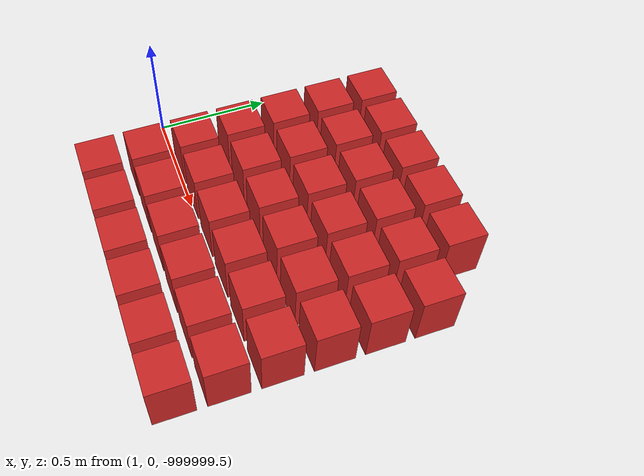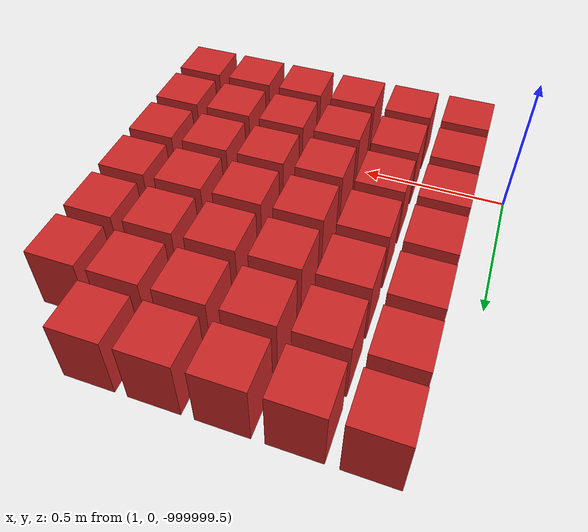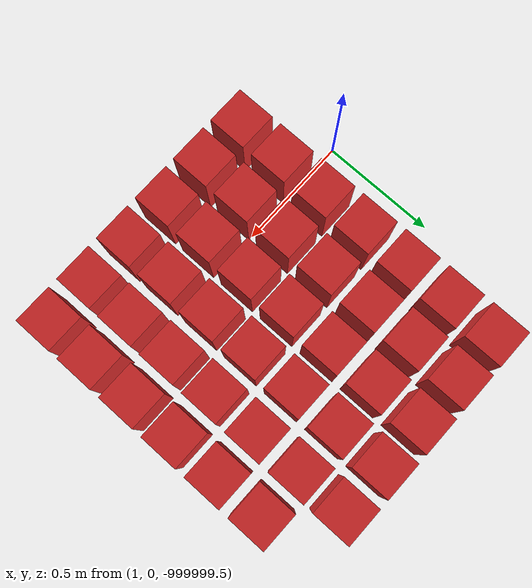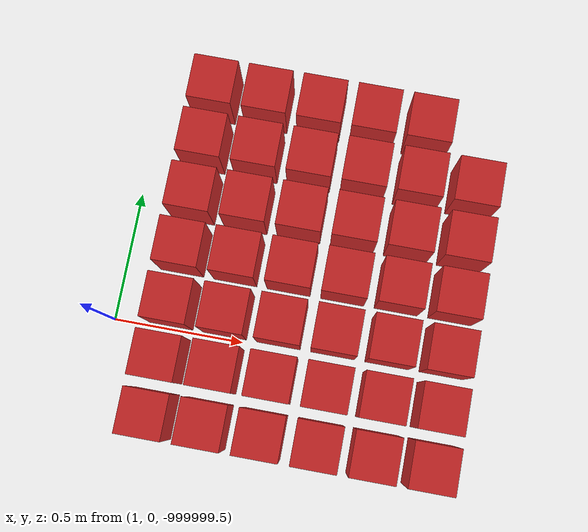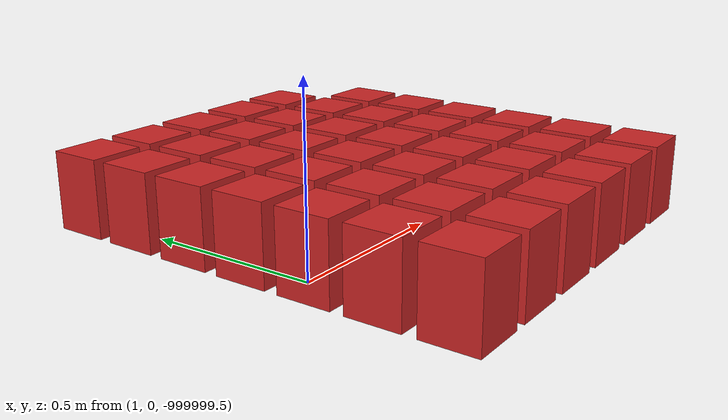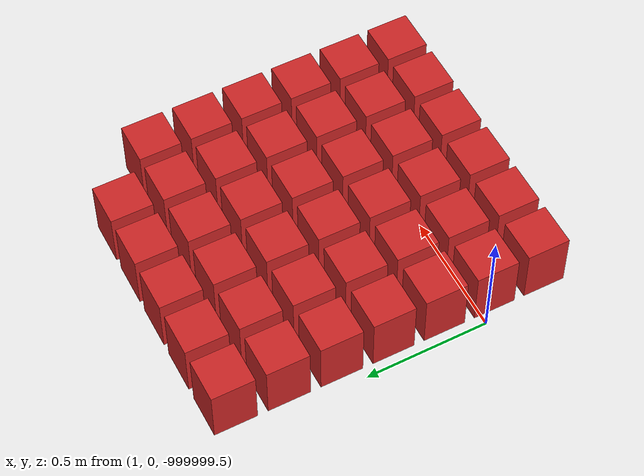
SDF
<sdf version="1.7">
 <world name="default">
  <model name="ground_plane">
   <static>1</static>
   <link name="link">
    <collision name="collision">
     <geometry><plane><normal>0 0 1</normal><size>100 100</size></plane></geometry>
     <surface>
      <contact><collide_bitmask>65535</collide_bitmask></contact>
      <friction><ode><mu>100</mu><mu2>50</mu2></ode></friction>
     </surface>
    </collision>
    <visual name="visual">
     <cast_shadows>0</cast_shadows>
     <geometry><plane><normal>0 0 1</normal><size>100 100</size></plane></geometry>
     <material>
      <script><uri>file://media/materials/scripts/gazebo.material</uri><name>Gazebo/Grey</name></script>
     </material>
    </visual>
   </link>
  </model>
  <model name="wall_247">
   <link name="link">
    <pose>0 0 0.5 0 -0 0</pose>
    <inertial>
     <mass>0.5167</mass>
     <inertia>
      <ixx>0.000861167</ixx>
      <ixy>0</ixy>
      <ixz>0</ixz>
      <iyy>0.000861167</iyy>
      <iyz>0</iyz>
      <izz>0.000861167</izz>
     </inertia>
    </inertial>
    <collision name="collision">
     <geometry><box><size>0.21 0.21 0.25</size></box></geometry>
     <surface>
      <contact>
       <poissons_ratio>0.347</poissons_ratio>
       <elastic_modulus>8.8e+09</elastic_modulus>
       <ode><kp>100000</kp><kd>100</kd><max_vel>100</max_vel><min_depth>0.001</min_depth></ode>
      </contact>
      <friction>
       <torsional>
        <coefficient>1</coefficient>
        <use_patch_radius>0</use_patch_radius>
        <surface_radius>0.01</surface_radius>
       </torsional>
      </friction>
     </surface>
    </collision>
    <visual name="visual">
     <geometry><box><size>0.175 0.175 0.25</size></box></geometry>
     <material>
      <script><uri>file://media/materials/scripts/gazebo.material</uri><name>Gazebo/Red</name></script>
     </material>
    </visual>
   </link>
   <pose>1.19565 -0.326087 -1e+06 0 -0 0</pose>
  </model>
  <model name="wall_248">
   <link name="link">
    <pose>0 0 0.5 0 -0 0</pose>
    <inertial>
     <mass>0.5167</mass>
     <inertia>
      <ixx>0.000861167</ixx>
      <ixy>0</ixy>
      <ixz>0</ixz>
      <iyy>0.000861167</iyy>
      <iyz>0</iyz>
      <izz>0.000861167</izz>
     </inertia>
    </inertial>
    <collision name="collision">
     <geometry><box><size>0.21 0.21 0.25</size></box></geometry>
     <surface>
      <contact>
       <poissons_ratio>0.347</poissons_ratio>
       <elastic_modulus>8.8e+09</elastic_modulus>
       <ode><kp>100000</kp><kd>100</kd><max_vel>100</max_vel><min_depth>0.001</min_depth></ode>
      </contact>
      <friction>
       <torsional>
        <coefficient>1</coefficient>
        <use_patch_radius>0</use_patch_radius>
        <surface_radius>0.01</surface_radius>
       </torsional>
      </friction>
     </surface>
    </collision>
    <visual name="visual">
     <geometry><box><size>0.175 0.175 0.25</size></box></geometry>
     <material>
      <script><uri>file://media/materials/scripts/gazebo.material</uri><name>Gazebo/Red</name></script>
     </material>
    </visual>
   </link>
   <pose>1.41304 -0.326087 -1e+06 0 -0 0</pose>
  </model>
  <model name="wall_249">
   <link name="link">
    <pose>0 0 0.5 0 -0 0</pose>
    <inertial>
     <mass>0.5167</mass>
     <inertia>
      <ixx>0.000861167</ixx>
      <ixy>0</ixy>
      <ixz>0</ixz>
      <iyy>0.000861167</iyy>
      <iyz>0</iyz>
      <izz>0.000861167</izz>
     </inertia>
    </inertial>
    <collision name="collision">
     <geometry><box><size>0.21 0.21 0.25</size></box></geometry>
     <surface>
      <contact>
       <poissons_ratio>0.347</poissons_ratio>
       <elastic_modulus>8.8e+09</elastic_modulus>
       <ode><kp>100000</kp><kd>100</kd><max_vel>100</max_vel><min_depth>0.001</min_depth></ode>
      </contact>
      <friction>
       <torsional>
        <coefficient>1</coefficient>
        <use_patch_radius>0</use_patch_radius>
        <surface_radius>0.01</surface_radius>
       </torsional>
      </friction>
     </surface>
    </collision>
    <visual name="visual">
     <geometry><box><size>0.175 0.175 0.25</size></box></geometry>
     <material>
      <script><uri>file://media/materials/scripts/gazebo.material</uri><name>Gazebo/Red</name></script>
     </material>
    </visual>
   </link>
   <pose>1.63043 -0.326087 -1e+06 0 -0 0</pose>
  </model>
  <model name="wall_250">
   <link name="link">
    <pose>0 0 0.5 0 -0 0</pose>
    <inertial>
     <mass>0.5167</mass>
     <inertia>
      <ixx>0.000861167</ixx>
      <ixy>0</ixy>
      <ixz>0</ixz>
      <iyy>0.000861167</iyy>
      <iyz>0</iyz>
      <izz>0.000861167</izz>
     </inertia>
    </inertial>
    <collision name="collision">
     <geometry><box><size>0.21 0.21 0.25</size></box></geometry>
     <surface>
      <contact>
       <poissons_ratio>0.347</poissons_ratio>
       <elastic_modulus>8.8e+09</elastic_modulus>
       <ode><kp>100000</kp><kd>100</kd><max_vel>100</max_vel><min_depth>0.001</min_depth></ode>
      </contact>
      <friction>
       <torsional>
        <coefficient>1</coefficient>
        <use_patch_radius>0</use_patch_radius>
        <surface_radius>0.01</surface_radius>
       </torsional>
      </friction>
     </surface>
    </collision>
    <visual name="visual">
     <geometry><box><size>0.175 0.175 0.25</size></box></geometry>
     <material>
      <script><uri>file://media/materials/scripts/gazebo.material</uri><name>Gazebo/Red</name></script>
     </material>
    </visual>
   </link>
   <pose>1.84783 -0.326087 -1e+06 0 -0 0</pose>
  </model>
  <model name="wall_251">
   <link name="link">
    <pose>0 0 0.5 0 -0 0</pose>
    <inertial>
     <mass>0.5167</mass>
     <inertia>
      <ixx>0.000861167</ixx>
      <ixy>0</ixy>
      <ixz>0</ixz>
      <iyy>0.000861167</iyy>
      <iyz>0</iyz>
      <izz>0.000861167</izz>
     </inertia>
    </inertial>
    <collision name="collision">
     <geometry><box><size>0.21 0.21 0.25</size></box></geometry>
     <surface>
      <contact>
       <poissons_ratio>0.347</poissons_ratio>
       <elastic_modulus>8.8e+09</elastic_modulus>
       <ode><kp>100000</kp><kd>100</kd><max_vel>100</max_vel><min_depth>0.001</min_depth></ode>
      </contact>
      <friction>
       <torsional>
        <coefficient>1</coefficient>
        <use_patch_radius>0</use_patch_radius>
        <surface_radius>0.01</surface_radius>
       </torsional>
      </friction>
     </surface>
    </collision>
    <visual name="visual">
     <geometry><box><size>0.175 0.175 0.25</size></box></geometry>
     <material>
      <script><uri>file://media/materials/scripts/gazebo.material</uri><name>Gazebo/Red</name></script>
     </material>
    </visual>
   </link>
   <pose>2.06522 -0.326087 -1e+06 0 -0 0</pose>
  </model>
  <model name="wall_252">
   <link name="link">
    <pose>0 0 0.5 0 -0 0</pose>
    <inertial>
     <mass>0.5167</mass>
     <inertia>
      <ixx>0.000861167</ixx>
      <ixy>0</ixy>
      <ixz>0</ixz>
      <iyy>0.000861167</iyy>
      <iyz>0</iyz>
      <izz>0.000861167</izz>
     </inertia>
    </inertial>
    <collision name="collision">
     <geometry><box><size>0.21 0.21 0.25</size></box></geometry>
     <surface>
      <contact>
       <poissons_ratio>0.347</poissons_ratio>
       <elastic_modulus>8.8e+09</elastic_modulus>
       <ode><kp>100000</kp><kd>100</kd><max_vel>100</max_vel><min_depth>0.001</min_depth></ode>
      </contact>
      <friction>
       <torsional>
        <coefficient>1</coefficient>
        <use_patch_radius>0</use_patch_radius>
        <surface_radius>0.01</surface_radius>
       </torsional>
      </friction>
     </surface>
    </collision>
    <visual name="visual">
     <geometry><box><size>0.175 0.175 0.25</size></box></geometry>
     <material>
      <script><uri>file://media/materials/scripts/gazebo.material</uri><name>Gazebo/Red</name></script>
     </material>
    </visual>
   </link>
   <pose>2.28261 -0.326087 -1e+06 0 -0 0</pose>
  </model>
  <model name="wall_270">
   <link name="link">
    <pose>0 0 0.5 0 -0 0</pose>
    <inertial>
     <mass>0.5167</mass>
     <inertia>
      <ixx>0.000861167</ixx>
      <ixy>0</ixy>
      <ixz>0</ixz>
      <iyy>0.000861167</iyy>
      <iyz>0</iyz>
      <izz>0.000861167</izz>
     </inertia>
    </inertial>
    <collision name="collision">
     <geometry><box><size>0.21 0.21 0.25</size></box></geometry>
     <surface>
      <contact>
       <poissons_ratio>0.347</poissons_ratio>
       <elastic_modulus>8.8e+09</elastic_modulus>
       <ode><kp>100000</kp><kd>100</kd><max_vel>100</max_vel><min_depth>0.001</min_depth></ode>
      </contact>
      <friction>
       <torsional>
        <coefficient>1</coefficient>
        <use_patch_radius>0</use_patch_radius>
        <surface_radius>0.01</surface_radius>
       </torsional>
      </friction>
     </surface>
    </collision>
    <visual name="visual">
     <geometry><box><size>0.175 0.175 0.25</size></box></geometry>
     <material>
      <script><uri>file://media/materials/scripts/gazebo.material</uri><name>Gazebo/Red</name></script>
     </material>
    </visual>
   </link>
   <pose>1.19565 -0.108696 -1e+06 0 -0 0</pose>
  </model>
  <model name="wall_271">
   <link name="link">
    <pose>0 0 0.5 0 -0 0</pose>
    <inertial>
     <mass>0.5167</mass>
     <inertia>
      <ixx>0.000861167</ixx>
      <ixy>0</ixy>
      <ixz>0</ixz>
      <iyy>0.000861167</iyy>
      <iyz>0</iyz>
      <izz>0.000861167</izz>
     </inertia>
    </inertial>
    <collision name="collision">
     <geometry><box><size>0.21 0.21 0.25</size></box></geometry>
     <surface>
      <contact>
       <poissons_ratio>0.347</poissons_ratio>
       <elastic_modulus>8.8e+09</elastic_modulus>
       <ode><kp>100000</kp><kd>100</kd><max_vel>100</max_vel><min_depth>0.001</min_depth></ode>
      </contact>
      <friction>
       <torsional>
        <coefficient>1</coefficient>
        <use_patch_radius>0</use_patch_radius>
        <surface_radius>0.01</surface_radius>
       </torsional>
      </friction>
     </surface>
    </collision>
    <visual name="visual">
     <geometry><box><size>0.175 0.175 0.25</size></box></geometry>
     <material>
      <script><uri>file://media/materials/scripts/gazebo.material</uri><name>Gazebo/Red</name></script>
     </material>
    </visual>
   </link>
   <pose>1.41304 -0.108696 -1e+06 0 -0 0</pose>
  </model>
  <model name="wall_272">
   <link name="link">
    <pose>0 0 0.5 0 -0 0</pose>
    <inertial>
     <mass>0.5167</mass>
     <inertia>
      <ixx>0.000861167</ixx>
      <ixy>0</ixy>
      <ixz>0</ixz>
      <iyy>0.000861167</iyy>
      <iyz>0</iyz>
      <izz>0.000861167</izz>
     </inertia>
    </inertial>
    <collision name="collision">
     <geometry><box><size>0.21 0.21 0.25</size></box></geometry>
     <surface>
      <contact>
       <poissons_ratio>0.347</poissons_ratio>
       <elastic_modulus>8.8e+09</elastic_modulus>
       <ode><kp>100000</kp><kd>100</kd><max_vel>100</max_vel><min_depth>0.001</min_depth></ode>
      </contact>
      <friction>
       <torsional>
        <coefficient>1</coefficient>
        <use_patch_radius>0</use_patch_radius>
        <surface_radius>0.01</surface_radius>
       </torsional>
      </friction>
     </surface>
    </collision>
    <visual name="visual">
     <geometry><box><size>0.175 0.175 0.25</size></box></geometry>
     <material>
      <script><uri>file://media/materials/scripts/gazebo.material</uri><name>Gazebo/Red</name></script>
     </material>
    </visual>
   </link>
   <pose>1.63043 -0.108696 -1e+06 0 -0 0</pose>
  </model>
  <model name="wall_273">
   <link name="link">
    <pose>0 0 0.5 0 -0 0</pose>
    <inertial>
     <mass>0.5167</mass>
     <inertia>
      <ixx>0.000861167</ixx>
      <ixy>0</ixy>
      <ixz>0</ixz>
      <iyy>0.000861167</iyy>
      <iyz>0</iyz>
      <izz>0.000861167</izz>
     </inertia>
    </inertial>
    <collision name="collision">
     <geometry><box><size>0.21 0.21 0.25</size></box></geometry>
     <surface>
      <contact>
       <poissons_ratio>0.347</poissons_ratio>
       <elastic_modulus>8.8e+09</elastic_modulus>
       <ode><kp>100000</kp><kd>100</kd><max_vel>100</max_vel><min_depth>0.001</min_depth></ode>
      </contact>
      <friction>
       <torsional>
        <coefficient>1</coefficient>
        <use_patch_radius>0</use_patch_radius>
        <surface_radius>0.01</surface_radius>
       </torsional>
      </friction>
     </surface>
    </collision>
    <visual name="visual">
     <geometry><box><size>0.175 0.175 0.25</size></box></geometry>
     <material>
      <script><uri>file://media/materials/scripts/gazebo.material</uri><name>Gazebo/Red</name></script>
     </material>
    </visual>
   </link>
   <pose>1.84783 -0.108696 -1e+06 0 -0 0</pose>
  </model>
  <model name="wall_274">
   <link name="link">
    <pose>0 0 0.5 0 -0 0</pose>
    <inertial>
     <mass>0.5167</mass>
     <inertia>
      <ixx>0.000861167</ixx>
      <ixy>0</ixy>
      <ixz>0</ixz>
      <iyy>0.000861167</iyy>
      <iyz>0</iyz>
      <izz>0.000861167</izz>
     </inertia>
    </inertial>
    <collision name="collision">
     <geometry><box><size>0.21 0.21 0.25</size></box></geometry>
     <surface>
      <contact>
       <poissons_ratio>0.347</poissons_ratio>
       <elastic_modulus>8.8e+09</elastic_modulus>
       <ode><kp>100000</kp><kd>100</kd><max_vel>100</max_vel><min_depth>0.001</min_depth></ode>
      </contact>
      <friction>
       <torsional>
        <coefficient>1</coefficient>
        <use_patch_radius>0</use_patch_radius>
        <surface_radius>0.01</surface_radius>
       </torsional>
      </friction>
     </surface>
    </collision>
    <visual name="visual">
     <geometry><box><size>0.175 0.175 0.25</size></box></geometry>
     <material>
      <script><uri>file://media/materials/scripts/gazebo.material</uri><name>Gazebo/Red</name></script>
     </material>
    </visual>
   </link>
   <pose>2.06522 -0.108696 -1e+06 0 -0 0</pose>
  </model>
  <model name="wall_275">
   <link name="link">
    <pose>0 0 0.5 0 -0 0</pose>
    <inertial>
     <mass>0.5167</mass>
     <inertia>
      <ixx>0.000861167</ixx>
      <ixy>0</ixy>
      <ixz>0</ixz>
      <iyy>0.000861167</iyy>
      <iyz>0</iyz>
      <izz>0.000861167</izz>
     </inertia>
    </inertial>
    <collision name="collision">
     <geometry><box><size>0.21 0.21 0.25</size></box></geometry>
     <surface>
      <contact>
       <poissons_ratio>0.347</poissons_ratio>
       <elastic_modulus>8.8e+09</elastic_modulus>
       <ode><kp>100000</kp><kd>100</kd><max_vel>100</max_vel><min_depth>0.001</min_depth></ode>
      </contact>
      <friction>
       <torsional>
        <coefficient>1</coefficient>
        <use_patch_radius>0</use_patch_radius>
        <surface_radius>0.01</surface_radius>
       </torsional>
      </friction>
     </surface>
    </collision>
    <visual name="visual">
     <geometry><box><size>0.175 0.175 0.25</size></box></geometry>
     <material>
      <script><uri>file://media/materials/scripts/gazebo.material</uri><name>Gazebo/Red</name></script>
     </material>
    </visual>
   </link>
   <pose>2.28261 -0.108696 -1e+06 0 -0 0</pose>
  </model>
  <model name="wall_293">
   <link name="link">
    <pose>0 0 0.5 0 -0 0</pose>
    <inertial>
     <mass>0.5167</mass>
     <inertia>
      <ixx>0.000861167</ixx>
      <ixy>0</ixy>
      <ixz>0</ixz>
      <iyy>0.000861167</iyy>
      <iyz>0</iyz>
      <izz>0.000861167</izz>
     </inertia>
    </inertial>
    <collision name="collision">
     <geometry><box><size>0.21 0.21 0.25</size></box></geometry>
     <surface>
      <contact>
       <poissons_ratio>0.347</poissons_ratio>
       <elastic_modulus>8.8e+09</elastic_modulus>
       <ode><kp>100000</kp><kd>100</kd><max_vel>100</max_vel><min_depth>0.001</min_depth></ode>
      </contact>
      <friction>
       <torsional>
        <coefficient>1</coefficient>
        <use_patch_radius>0</use_patch_radius>
        <surface_radius>0.01</surface_radius>
       </torsional>
      </friction>
     </surface>
    </collision>
    <visual name="visual">
     <geometry><box><size>0.175 0.175 0.25</size></box></geometry>
     <material>
      <script><uri>file://media/materials/scripts/gazebo.material</uri><name>Gazebo/Red</name></script>
     </material>
    </visual>
   </link>
   <pose>1.19565 0.108696 -1e+06 0 -0 0</pose>
  </model>
  <model name="wall_294">
   <link name="link">
    <pose>0 0 0.5 0 -0 0</pose>
    <inertial>
     <mass>0.5167</mass>
     <inertia>
      <ixx>0.000861167</ixx>
      <ixy>0</ixy>
      <ixz>0</ixz>
      <iyy>0.000861167</iyy>
      <iyz>0</iyz>
      <izz>0.000861167</izz>
     </inertia>
    </inertial>
    <collision name="collision">
     <geometry><box><size>0.21 0.21 0.25</size></box></geometry>
     <surface>
      <contact>
       <poissons_ratio>0.347</poissons_ratio>
       <elastic_modulus>8.8e+09</elastic_modulus>
       <ode><kp>100000</kp><kd>100</kd><max_vel>100</max_vel><min_depth>0.001</min_depth></ode>
      </contact>
      <friction>
       <torsional>
        <coefficient>1</coefficient>
        <use_patch_radius>0</use_patch_radius>
        <surface_radius>0.01</surface_radius>
       </torsional>
      </friction>
     </surface>
    </collision>
    <visual name="visual">
     <geometry><box><size>0.175 0.175 0.25</size></box></geometry>
     <material>
      <script><uri>file://media/materials/scripts/gazebo.material</uri><name>Gazebo/Red</name></script>
     </material>
    </visual>
   </link>
   <pose>1.41304 0.108696 -1e+06 0 -0 0</pose>
  </model>
  <model name="wall_295">
   <link name="link">
    <pose>0 0 0.5 0 -0 0</pose>
    <inertial>
     <mass>0.5167</mass>
     <inertia>
      <ixx>0.000861167</ixx>
      <ixy>0</ixy>
      <ixz>0</ixz>
      <iyy>0.000861167</iyy>
      <iyz>0</iyz>
      <izz>0.000861167</izz>
     </inertia>
    </inertial>
    <collision name="collision">
     <geometry><box><size>0.21 0.21 0.25</size></box></geometry>
     <surface>
      <contact>
       <poissons_ratio>0.347</poissons_ratio>
       <elastic_modulus>8.8e+09</elastic_modulus>
       <ode><kp>100000</kp><kd>100</kd><max_vel>100</max_vel><min_depth>0.001</min_depth></ode>
      </contact>
      <friction>
       <torsional>
        <coefficient>1</coefficient>
        <use_patch_radius>0</use_patch_radius>
        <surface_radius>0.01</surface_radius>
       </torsional>
      </friction>
     </surface>
    </collision>
    <visual name="visual">
     <geometry><box><size>0.175 0.175 0.25</size></box></geometry>
     <material>
      <script><uri>file://media/materials/scripts/gazebo.material</uri><name>Gazebo/Red</name></script>
     </material>
    </visual>
   </link>
   <pose>1.63043 0.108696 -1e+06 0 -0 0</pose>
  </model>
  <model name="wall_296">
   <link name="link">
    <pose>0 0 0.5 0 -0 0</pose>
    <inertial>
     <mass>0.5167</mass>
     <inertia>
      <ixx>0.000861167</ixx>
      <ixy>0</ixy>
      <ixz>0</ixz>
      <iyy>0.000861167</iyy>
      <iyz>0</iyz>
      <izz>0.000861167</izz>
     </inertia>
    </inertial>
    <collision name="collision">
     <geometry><box><size>0.21 0.21 0.25</size></box></geometry>
     <surface>
      <contact>
       <poissons_ratio>0.347</poissons_ratio>
       <elastic_modulus>8.8e+09</elastic_modulus>
       <ode><kp>100000</kp><kd>100</kd><max_vel>100</max_vel><min_depth>0.001</min_depth></ode>
      </contact>
      <friction>
       <torsional>
        <coefficient>1</coefficient>
        <use_patch_radius>0</use_patch_radius>
        <surface_radius>0.01</surface_radius>
       </torsional>
      </friction>
     </surface>
    </collision>
    <visual name="visual">
     <geometry><box><size>0.175 0.175 0.25</size></box></geometry>
     <material>
      <script><uri>file://media/materials/scripts/gazebo.material</uri><name>Gazebo/Red</name></script>
     </material>
    </visual>
   </link>
   <pose>1.84783 0.108696 -1e+06 0 -0 0</pose>
  </model>
  <model name="wall_297">
   <link name="link">
    <pose>0 0 0.5 0 -0 0</pose>
    <inertial>
     <mass>0.5167</mass>
     <inertia>
      <ixx>0.000861167</ixx>
      <ixy>0</ixy>
      <ixz>0</ixz>
      <iyy>0.000861167</iyy>
      <iyz>0</iyz>
      <izz>0.000861167</izz>
     </inertia>
    </inertial>
    <collision name="collision">
     <geometry><box><size>0.21 0.21 0.25</size></box></geometry>
     <surface>
      <contact>
       <poissons_ratio>0.347</poissons_ratio>
       <elastic_modulus>8.8e+09</elastic_modulus>
       <ode><kp>100000</kp><kd>100</kd><max_vel>100</max_vel><min_depth>0.001</min_depth></ode>
      </contact>
      <friction>
       <torsional>
        <coefficient>1</coefficient>
        <use_patch_radius>0</use_patch_radius>
        <surface_radius>0.01</surface_radius>
       </torsional>
      </friction>
     </surface>
    </collision>
    <visual name="visual">
     <geometry><box><size>0.175 0.175 0.25</size></box></geometry>
     <material>
      <script><uri>file://media/materials/scripts/gazebo.material</uri><name>Gazebo/Red</name></script>
     </material>
    </visual>
   </link>
   <pose>2.06522 0.108696 -1e+06 0 -0 0</pose>
  </model>
  <model name="wall_298">
   <link name="link">
    <pose>0 0 0.5 0 -0 0</pose>
    <inertial>
     <mass>0.5167</mass>
     <inertia>
      <ixx>0.000861167</ixx>
      <ixy>0</ixy>
      <ixz>0</ixz>
      <iyy>0.000861167</iyy>
      <iyz>0</iyz>
      <izz>0.000861167</izz>
     </inertia>
    </inertial>
    <collision name="collision">
     <geometry><box><size>0.21 0.21 0.25</size></box></geometry>
     <surface>
      <contact>
       <poissons_ratio>0.347</poissons_ratio>
       <elastic_modulus>8.8e+09</elastic_modulus>
       <ode><kp>100000</kp><kd>100</kd><max_vel>100</max_vel><min_depth>0.001</min_depth></ode>
      </contact>
      <friction>
       <torsional>
        <coefficient>1</coefficient>
        <use_patch_radius>0</use_patch_radius>
        <surface_radius>0.01</surface_radius>
       </torsional>
      </friction>
     </surface>
    </collision>
    <visual name="visual">
     <geometry><box><size>0.175 0.175 0.25</size></box></geometry>
     <material>
      <script><uri>file://media/materials/scripts/gazebo.material</uri><name>Gazebo/Red</name></script>
     </material>
    </visual>
   </link>
   <pose>2.28261 0.108696 -1e+06 0 -0 0</pose>
  </model>
  <model name="wall_316">
   <link name="link">
    <pose>0 0 0.5 0 -0 0</pose>
    <inertial>
     <mass>0.5167</mass>
     <inertia>
      <ixx>0.000861167</ixx>
      <ixy>0</ixy>
      <ixz>0</ixz>
      <iyy>0.000861167</iyy>
      <iyz>0</iyz>
      <izz>0.000861167</izz>
     </inertia>
    </inertial>
    <collision name="collision">
     <geometry><box><size>0.21 0.21 0.25</size></box></geometry>
     <surface>
      <contact>
       <poissons_ratio>0.347</poissons_ratio>
       <elastic_modulus>8.8e+09</elastic_modulus>
       <ode><kp>100000</kp><kd>100</kd><max_vel>100</max_vel><min_depth>0.001</min_depth></ode>
      </contact>
      <friction>
       <torsional>
        <coefficient>1</coefficient>
        <use_patch_radius>0</use_patch_radius>
        <surface_radius>0.01</surface_radius>
       </torsional>
      </friction>
     </surface>
    </collision>
    <visual name="visual">
     <geometry><box><size>0.175 0.175 0.25</size></box></geometry>
     <material>
      <script><uri>file://media/materials/scripts/gazebo.material</uri><name>Gazebo/Red</name></script>
     </material>
    </visual>
   </link>
   <pose>1.19565 0.326087 -1e+06 0 -0 0</pose>
  </model>
  <model name="wall_317">
   <link name="link">
    <pose>0 0 0.5 0 -0 0</pose>
    <inertial>
     <mass>0.5167</mass>
     <inertia>
      <ixx>0.000861167</ixx>
      <ixy>0</ixy>
      <ixz>0</ixz>
      <iyy>0.000861167</iyy>
      <iyz>0</iyz>
      <izz>0.000861167</izz>
     </inertia>
    </inertial>
    <collision name="collision">
     <geometry><box><size>0.21 0.21 0.25</size></box></geometry>
     <surface>
      <contact>
       <poissons_ratio>0.347</poissons_ratio>
       <elastic_modulus>8.8e+09</elastic_modulus>
       <ode><kp>100000</kp><kd>100</kd><max_vel>100</max_vel><min_depth>0.001</min_depth></ode>
      </contact>
      <friction>
       <torsional>
        <coefficient>1</coefficient>
        <use_patch_radius>0</use_patch_radius>
        <surface_radius>0.01</surface_radius>
       </torsional>
      </friction>
     </surface>
    </collision>
    <visual name="visual">
     <geometry><box><size>0.175 0.175 0.25</size></box></geometry>
     <material>
      <script><uri>file://media/materials/scripts/gazebo.material</uri><name>Gazebo/Red</name></script>
     </material>
    </visual>
   </link>
   <pose>1.41304 0.326087 -1e+06 0 -0 0</pose>
  </model>
  <model name="wall_318">
   <link name="link">
    <pose>0 0 0.5 0 -0 0</pose>
    <inertial>
     <mass>0.5167</mass>
     <inertia>
      <ixx>0.000861167</ixx>
      <ixy>0</ixy>
      <ixz>0</ixz>
      <iyy>0.000861167</iyy>
      <iyz>0</iyz>
      <izz>0.000861167</izz>
     </inertia>
    </inertial>
    <collision name="collision">
     <geometry><box><size>0.21 0.21 0.25</size></box></geometry>
     <surface>
      <contact>
       <poissons_ratio>0.347</poissons_ratio>
       <elastic_modulus>8.8e+09</elastic_modulus>
       <ode><kp>100000</kp><kd>100</kd><max_vel>100</max_vel><min_depth>0.001</min_depth></ode>
      </contact>
      <friction>
       <torsional>
        <coefficient>1</coefficient>
        <use_patch_radius>0</use_patch_radius>
        <surface_radius>0.01</surface_radius>
       </torsional>
      </friction>
     </surface>
    </collision>
    <visual name="visual">
     <geometry><box><size>0.175 0.175 0.25</size></box></geometry>
     <material>
      <script><uri>file://media/materials/scripts/gazebo.material</uri><name>Gazebo/Red</name></script>
     </material>
    </visual>
   </link>
   <pose>1.63043 0.326087 -1e+06 0 -0 0</pose>
  </model>
  <model name="wall_319">
   <link name="link">
    <pose>0 0 0.5 0 -0 0</pose>
    <inertial>
     <mass>0.5167</mass>
     <inertia>
      <ixx>0.000861167</ixx>
      <ixy>0</ixy>
      <ixz>0</ixz>
      <iyy>0.000861167</iyy>
      <iyz>0</iyz>
      <izz>0.000861167</izz>
     </inertia>
    </inertial>
    <collision name="collision">
     <geometry><box><size>0.21 0.21 0.25</size></box></geometry>
     <surface>
      <contact>
       <poissons_ratio>0.347</poissons_ratio>
       <elastic_modulus>8.8e+09</elastic_modulus>
       <ode><kp>100000</kp><kd>100</kd><max_vel>100</max_vel><min_depth>0.001</min_depth></ode>
      </contact>
      <friction>
       <torsional>
        <coefficient>1</coefficient>
        <use_patch_radius>0</use_patch_radius>
        <surface_radius>0.01</surface_radius>
       </torsional>
      </friction>
     </surface>
    </collision>
    <visual name="visual">
     <geometry><box><size>0.175 0.175 0.25</size></box></geometry>
     <material>
      <script><uri>file://media/materials/scripts/gazebo.material</uri><name>Gazebo/Red</name></script>
     </material>
    </visual>
   </link>
   <pose>1.84783 0.326087 -1e+06 0 -0 0</pose>
  </model>
  <model name="wall_320">
   <link name="link">
    <pose>0 0 0.5 0 -0 0</pose>
    <inertial>
     <mass>0.5167</mass>
     <inertia>
      <ixx>0.000861167</ixx>
      <ixy>0</ixy>
      <ixz>0</ixz>
      <iyy>0.000861167</iyy>
      <iyz>0</iyz>
      <izz>0.000861167</izz>
     </inertia>
    </inertial>
    <collision name="collision">
     <geometry><box><size>0.21 0.21 0.25</size></box></geometry>
     <surface>
      <contact>
       <poissons_ratio>0.347</poissons_ratio>
       <elastic_modulus>8.8e+09</elastic_modulus>
       <ode><kp>100000</kp><kd>100</kd><max_vel>100</max_vel><min_depth>0.001</min_depth></ode>
      </contact>
      <friction>
       <torsional>
        <coefficient>1</coefficient>
        <use_patch_radius>0</use_patch_radius>
        <surface_radius>0.01</surface_radius>
       </torsional>
      </friction>
     </surface>
    </collision>
    <visual name="visual">
     <geometry><box><size>0.175 0.175 0.25</size></box></geometry>
     <material>
      <script><uri>file://media/materials/scripts/gazebo.material</uri><name>Gazebo/Red</name></script>
     </material>
    </visual>
   </link>
   <pose>2.06522 0.326087 -1e+06 0 -0 0</pose>
  </model>
  <model name="wall_321">
   <link name="link">
    <pose>0 0 0.5 0 -0 0</pose>
    <inertial>
     <mass>0.5167</mass>
     <inertia>
      <ixx>0.000861167</ixx>
      <ixy>0</ixy>
      <ixz>0</ixz>
      <iyy>0.000861167</iyy>
      <iyz>0</iyz>
      <izz>0.000861167</izz>
     </inertia>
    </inertial>
    <collision name="collision">
     <geometry><box><size>0.21 0.21 0.25</size></box></geometry>
     <surface>
      <contact>
       <poissons_ratio>0.347</poissons_ratio>
       <elastic_modulus>8.8e+09</elastic_modulus>
       <ode><kp>100000</kp><kd>100</kd><max_vel>100</max_vel><min_depth>0.001</min_depth></ode>
      </contact>
      <friction>
       <torsional>
        <coefficient>1</coefficient>
        <use_patch_radius>0</use_patch_radius>
        <surface_radius>0.01</surface_radius>
       </torsional>
      </friction>
     </surface>
    </collision>
    <visual name="visual">
     <geometry><box><size>0.175 0.175 0.25</size></box></geometry>
     <material>
      <script><uri>file://media/materials/scripts/gazebo.material</uri><name>Gazebo/Red</name></script>
     </material>
    </visual>
   </link>
   <pose>2.28261 0.326087 -1e+06 0 -0 0</pose>
  </model>
  <model name="wall_339">
   <link name="link">
    <pose>0 0 0.5 0 -0 0</pose>
    <inertial>
     <mass>0.5167</mass>
     <inertia>
      <ixx>0.000861167</ixx>
      <ixy>0</ixy>
      <ixz>0</ixz>
      <iyy>0.000861167</iyy>
      <iyz>0</iyz>
      <izz>0.000861167</izz>
     </inertia>
    </inertial>
    <collision name="collision">
     <geometry><box><size>0.21 0.21 0.25</size></box></geometry>
     <surface>
      <contact>
       <poissons_ratio>0.347</poissons_ratio>
       <elastic_modulus>8.8e+09</elastic_modulus>
       <ode><kp>100000</kp><kd>100</kd><max_vel>100</max_vel><min_depth>0.001</min_depth></ode>
      </contact>
      <friction>
       <torsional>
        <coefficient>1</coefficient>
        <use_patch_radius>0</use_patch_radius>
        <surface_radius>0.01</surface_radius>
       </torsional>
      </friction>
     </surface>
    </collision>
    <visual name="visual">
     <geometry><box><size>0.175 0.175 0.25</size></box></geometry>
     <material>
      <script><uri>file://media/materials/scripts/gazebo.material</uri><name>Gazebo/Red</name></script>
     </material>
    </visual>
   </link>
   <pose>1.19565 0.543478 -1e+06 0 -0 0</pose>
  </model>
  <model name="wall_340">
   <link name="link">
    <pose>0 0 0.5 0 -0 0</pose>
    <inertial>
     <mass>0.5167</mass>
     <inertia>
      <ixx>0.000861167</ixx>
      <ixy>0</ixy>
      <ixz>0</ixz>
      <iyy>0.000861167</iyy>
      <iyz>0</iyz>
      <izz>0.000861167</izz>
     </inertia>
    </inertial>
    <collision name="collision">
     <geometry><box><size>0.21 0.21 0.25</size></box></geometry>
     <surface>
      <contact>
       <poissons_ratio>0.347</poissons_ratio>
       <elastic_modulus>8.8e+09</elastic_modulus>
       <ode><kp>100000</kp><kd>100</kd><max_vel>100</max_vel><min_depth>0.001</min_depth></ode>
      </contact>
      <friction>
       <torsional>
        <coefficient>1</coefficient>
        <use_patch_radius>0</use_patch_radius>
        <surface_radius>0.01</surface_radius>
       </torsional>
      </friction>
     </surface>
    </collision>
    <visual name="visual">
     <geometry><box><size>0.175 0.175 0.25</size></box></geometry>
     <material>
      <script><uri>file://media/materials/scripts/gazebo.material</uri><name>Gazebo/Red</name></script>
     </material>
    </visual>
   </link>
   <pose>1.41304 0.543478 -1e+06 0 -0 0</pose>
  </model>
  <model name="wall_341">
   <link name="link">
    <pose>0 0 0.5 0 -0 0</pose>
    <inertial>
     <mass>0.5167</mass>
     <inertia>
      <ixx>0.000861167</ixx>
      <ixy>0</ixy>
      <ixz>0</ixz>
      <iyy>0.000861167</iyy>
      <iyz>0</iyz>
      <izz>0.000861167</izz>
     </inertia>
    </inertial>
    <collision name="collision">
     <geometry><box><size>0.21 0.21 0.25</size></box></geometry>
     <surface>
      <contact>
       <poissons_ratio>0.347</poissons_ratio>
       <elastic_modulus>8.8e+09</elastic_modulus>
       <ode><kp>100000</kp><kd>100</kd><max_vel>100</max_vel><min_depth>0.001</min_depth></ode>
      </contact>
      <friction>
       <torsional>
        <coefficient>1</coefficient>
        <use_patch_radius>0</use_patch_radius>
        <surface_radius>0.01</surface_radius>
       </torsional>
      </friction>
     </surface>
    </collision>
    <visual name="visual">
     <geometry><box><size>0.175 0.175 0.25</size></box></geometry>
     <material>
      <script><uri>file://media/materials/scripts/gazebo.material</uri><name>Gazebo/Red</name></script>
     </material>
    </visual>
   </link>
   <pose>1.63043 0.543478 -1e+06 0 -0 0</pose>
  </model>
  <model name="wall_342">
   <link name="link">
    <pose>0 0 0.5 0 -0 0</pose>
    <inertial>
     <mass>0.5167</mass>
     <inertia>
      <ixx>0.000861167</ixx>
      <ixy>0</ixy>
      <ixz>0</ixz>
      <iyy>0.000861167</iyy>
      <iyz>0</iyz>
      <izz>0.000861167</izz>
     </inertia>
    </inertial>
    <collision name="collision">
     <geometry><box><size>0.21 0.21 0.25</size></box></geometry>
     <surface>
      <contact>
       <poissons_ratio>0.347</poissons_ratio>
       <elastic_modulus>8.8e+09</elastic_modulus>
       <ode><kp>100000</kp><kd>100</kd><max_vel>100</max_vel><min_depth>0.001</min_depth></ode>
      </contact>
      <friction>
       <torsional>
        <coefficient>1</coefficient>
        <use_patch_radius>0</use_patch_radius>
        <surface_radius>0.01</surface_radius>
       </torsional>
      </friction>
     </surface>
    </collision>
    <visual name="visual">
     <geometry><box><size>0.175 0.175 0.25</size></box></geometry>
     <material>
      <script><uri>file://media/materials/scripts/gazebo.material</uri><name>Gazebo/Red</name></script>
     </material>
    </visual>
   </link>
   <pose>1.84783 0.543478 -1e+06 0 -0 0</pose>
  </model>
  <model name="wall_343">
   <link name="link">
    <pose>0 0 0.5 0 -0 0</pose>
    <inertial>
     <mass>0.5167</mass>
     <inertia>
      <ixx>0.000861167</ixx>
      <ixy>0</ixy>
      <ixz>0</ixz>
      <iyy>0.000861167</iyy>
      <iyz>0</iyz>
      <izz>0.000861167</izz>
     </inertia>
    </inertial>
    <collision name="collision">
     <geometry><box><size>0.21 0.21 0.25</size></box></geometry>
     <surface>
      <contact>
       <poissons_ratio>0.347</poissons_ratio>
       <elastic_modulus>8.8e+09</elastic_modulus>
       <ode><kp>100000</kp><kd>100</kd><max_vel>100</max_vel><min_depth>0.001</min_depth></ode>
      </contact>
      <friction>
       <torsional>
        <coefficient>1</coefficient>
        <use_patch_radius>0</use_patch_radius>
        <surface_radius>0.01</surface_radius>
       </torsional>
      </friction>
     </surface>
    </collision>
    <visual name="visual">
     <geometry><box><size>0.175 0.175 0.25</size></box></geometry>
     <material>
      <script><uri>file://media/materials/scripts/gazebo.material</uri><name>Gazebo/Red</name></script>
     </material>
    </visual>
   </link>
   <pose>2.06522 0.543478 -1e+06 0 -0 0</pose>
  </model>
  <model name="wall_344">
   <link name="link">
    <pose>0 0 0.5 0 -0 0</pose>
    <inertial>
     <mass>0.5167</mass>
     <inertia>
      <ixx>0.000861167</ixx>
      <ixy>0</ixy>
      <ixz>0</ixz>
      <iyy>0.000861167</iyy>
      <iyz>0</iyz>
      <izz>0.000861167</izz>
     </inertia>
    </inertial>
    <collision name="collision">
     <geometry><box><size>0.21 0.21 0.25</size></box></geometry>
     <surface>
      <contact>
       <poissons_ratio>0.347</poissons_ratio>
       <elastic_modulus>8.8e+09</elastic_modulus>
       <ode><kp>100000</kp><kd>100</kd><max_vel>100</max_vel><min_depth>0.001</min_depth></ode>
      </contact>
      <friction>
       <torsional>
        <coefficient>1</coefficient>
        <use_patch_radius>0</use_patch_radius>
        <surface_radius>0.01</surface_radius>
       </torsional>
      </friction>
     </surface>
    </collision>
    <visual name="visual">
     <geometry><box><size>0.175 0.175 0.25</size></box></geometry>
     <material>
      <script><uri>file://media/materials/scripts/gazebo.material</uri><name>Gazebo/Red</name></script>
     </material>
    </visual>
   </link>
   <pose>2.28261 0.543478 -1e+06 0 -0 0</pose>
  </model>
  <model name="wall_362">
   <link name="link">
    <pose>0 0 0.5 0 -0 0</pose>
    <inertial>
     <mass>0.5167</mass>
     <inertia>
      <ixx>0.000861167</ixx>
      <ixy>0</ixy>
      <ixz>0</ixz>
      <iyy>0.000861167</iyy>
      <iyz>0</iyz>
      <izz>0.000861167</izz>
     </inertia>
    </inertial>
    <collision name="collision">
     <geometry><box><size>0.21 0.21 0.25</size></box></geometry>
     <surface>
      <contact>
       <poissons_ratio>0.347</poissons_ratio>
       <elastic_modulus>8.8e+09</elastic_modulus>
       <ode><kp>100000</kp><kd>100</kd><max_vel>100</max_vel><min_depth>0.001</min_depth></ode>
      </contact>
      <friction>
       <torsional>
        <coefficient>1</coefficient>
        <use_patch_radius>0</use_patch_radius>
        <surface_radius>0.01</surface_radius>
       </torsional>
      </friction>
     </surface>
    </collision>
    <visual name="visual">
     <geometry><box><size>0.175 0.175 0.25</size></box></geometry>
     <material>
      <script><uri>file://media/materials/scripts/gazebo.material</uri><name>Gazebo/Red</name></script>
     </material>
    </visual>
   </link>
   <pose>1.19565 0.76087 -1e+06 0 -0 0</pose>
  </model>
  <model name="wall_363">
   <link name="link">
    <pose>0 0 0.5 0 -0 0</pose>
    <inertial>
     <mass>0.5167</mass>
     <inertia>
      <ixx>0.000861167</ixx>
      <ixy>0</ixy>
      <ixz>0</ixz>
      <iyy>0.000861167</iyy>
      <iyz>0</iyz>
      <izz>0.000861167</izz>
     </inertia>
    </inertial>
    <collision name="collision">
     <geometry><box><size>0.21 0.21 0.25</size></box></geometry>
     <surface>
      <contact>
       <poissons_ratio>0.347</poissons_ratio>
       <elastic_modulus>8.8e+09</elastic_modulus>
       <ode><kp>100000</kp><kd>100</kd><max_vel>100</max_vel><min_depth>0.001</min_depth></ode>
      </contact>
      <friction>
       <torsional>
        <coefficient>1</coefficient>
        <use_patch_radius>0</use_patch_radius>
        <surface_radius>0.01</surface_radius>
       </torsional>
      </friction>
     </surface>
    </collision>
    <visual name="visual">
     <geometry><box><size>0.175 0.175 0.25</size></box></geometry>
     <material>
      <script><uri>file://media/materials/scripts/gazebo.material</uri><name>Gazebo/Red</name></script>
     </material>
    </visual>
   </link>
   <pose>1.41304 0.76087 -1e+06 0 -0 0</pose>
  </model>
  <model name="wall_364">
   <link name="link">
    <pose>0 0 0.5 0 -0 0</pose>
    <inertial>
     <mass>0.5167</mass>
     <inertia>
      <ixx>0.000861167</ixx>
      <ixy>0</ixy>
      <ixz>0</ixz>
      <iyy>0.000861167</iyy>
      <iyz>0</iyz>
      <izz>0.000861167</izz>
     </inertia>
    </inertial>
    <collision name="collision">
     <geometry><box><size>0.21 0.21 0.25</size></box></geometry>
     <surface>
      <contact>
       <poissons_ratio>0.347</poissons_ratio>
       <elastic_modulus>8.8e+09</elastic_modulus>
       <ode><kp>100000</kp><kd>100</kd><max_vel>100</max_vel><min_depth>0.001</min_depth></ode>
      </contact>
      <friction>
       <torsional>
        <coefficient>1</coefficient>
        <use_patch_radius>0</use_patch_radius>
        <surface_radius>0.01</surface_radius>
       </torsional>
      </friction>
     </surface>
    </collision>
    <visual name="visual">
     <geometry><box><size>0.175 0.175 0.25</size></box></geometry>
     <material>
      <script><uri>file://media/materials/scripts/gazebo.material</uri><name>Gazebo/Red</name></script>
     </material>
    </visual>
   </link>
   <pose>1.63043 0.76087 -1e+06 0 -0 0</pose>
  </model>
  <model name="wall_365">
   <link name="link">
    <pose>0 0 0.5 0 -0 0</pose>
    <inertial>
     <mass>0.5167</mass>
     <inertia>
      <ixx>0.000861167</ixx>
      <ixy>0</ixy>
      <ixz>0</ixz>
      <iyy>0.000861167</iyy>
      <iyz>0</iyz>
      <izz>0.000861167</izz>
     </inertia>
    </inertial>
    <collision name="collision">
     <geometry><box><size>0.21 0.21 0.25</size></box></geometry>
     <surface>
      <contact>
       <poissons_ratio>0.347</poissons_ratio>
       <elastic_modulus>8.8e+09</elastic_modulus>
       <ode><kp>100000</kp><kd>100</kd><max_vel>100</max_vel><min_depth>0.001</min_depth></ode>
      </contact>
      <friction>
       <torsional>
        <coefficient>1</coefficient>
        <use_patch_radius>0</use_patch_radius>
        <surface_radius>0.01</surface_radius>
       </torsional>
      </friction>
     </surface>
    </collision>
    <visual name="visual">
     <geometry><box><size>0.175 0.175 0.25</size></box></geometry>
     <material>
      <script><uri>file://media/materials/scripts/gazebo.material</uri><name>Gazebo/Red</name></script>
     </material>
    </visual>
   </link>
   <pose>1.84783 0.76087 -1e+06 0 -0 0</pose>
  </model>
  <model name="wall_366">
   <link name="link">
    <pose>0 0 0.5 0 -0 0</pose>
    <inertial>
     <mass>0.5167</mass>
     <inertia>
      <ixx>0.000861167</ixx>
      <ixy>0</ixy>
      <ixz>0</ixz>
      <iyy>0.000861167</iyy>
      <iyz>0</iyz>
      <izz>0.000861167</izz>
     </inertia>
    </inertial>
    <collision name="collision">
     <geometry><box><size>0.21 0.21 0.25</size></box></geometry>
     <surface>
      <contact>
       <poissons_ratio>0.347</poissons_ratio>
       <elastic_modulus>8.8e+09</elastic_modulus>
       <ode><kp>100000</kp><kd>100</kd><max_vel>100</max_vel><min_depth>0.001</min_depth></ode>
      </contact>
      <friction>
       <torsional>
        <coefficient>1</coefficient>
        <use_patch_radius>0</use_patch_radius>
        <surface_radius>0.01</surface_radius>
       </torsional>
      </friction>
     </surface>
    </collision>
    <visual name="visual">
     <geometry><box><size>0.175 0.175 0.25</size></box></geometry>
     <material>
      <script><uri>file://media/materials/scripts/gazebo.material</uri><name>Gazebo/Red</name></script>
     </material>
    </visual>
   </link>
   <pose>2.06522 0.76087 -1e+06 0 -0 0</pose>
  </model>
  <model name="wall_367">
   <link name="link">
    <pose>0 0 0.5 0 -0 0</pose>
    <inertial>
     <mass>0.5167</mass>
     <inertia>
      <ixx>0.000861167</ixx>
      <ixy>0</ixy>
      <ixz>0</ixz>
      <iyy>0.000861167</iyy>
      <iyz>0</iyz>
      <izz>0.000861167</izz>
     </inertia>
    </inertial>
    <collision name="collision">
     <geometry><box><size>0.21 0.21 0.25</size></box></geometry>
     <surface>
      <contact>
       <poissons_ratio>0.347</poissons_ratio>
       <elastic_modulus>8.8e+09</elastic_modulus>
       <ode><kp>100000</kp><kd>100</kd><max_vel>100</max_vel><min_depth>0.001</min_depth></ode>
      </contact>
      <friction>
       <torsional>
        <coefficient>1</coefficient>
        <use_patch_radius>0</use_patch_radius>
        <surface_radius>0.01</surface_radius>
       </torsional>
      </friction>
     </surface>
    </collision>
    <visual name="visual">
     <geometry><box><size>0.175 0.175 0.25</size></box></geometry>
     <material>
      <script><uri>file://media/materials/scripts/gazebo.material</uri><name>Gazebo/Red</name></script>
     </material>
    </visual>
   </link>
   <pose>2.28261 0.76087 -1e+06 0 -0 0</pose>
  </model>
  <model name="wall_385">
   <link name="link">
    <pose>0 0 0.5 0 -0 0</pose>
    <inertial>
     <mass>0.5167</mass>
     <inertia>
      <ixx>0.000861167</ixx>
      <ixy>0</ixy>
      <ixz>0</ixz>
      <iyy>0.000861167</iyy>
      <iyz>0</iyz>
      <izz>0.000861167</izz>
     </inertia>
    </inertial>
    <collision name="collision">
     <geometry><box><size>0.21 0.21 0.25</size></box></geometry>
     <surface>
      <contact>
       <poissons_ratio>0.347</poissons_ratio>
       <elastic_modulus>8.8e+09</elastic_modulus>
       <ode><kp>100000</kp><kd>100</kd><max_vel>100</max_vel><min_depth>0.001</min_depth></ode>
      </contact>
      <friction>
       <torsional>
        <coefficient>1</coefficient>
        <use_patch_radius>0</use_patch_radius>
        <surface_radius>0.01</surface_radius>
       </torsional>
      </friction>
     </surface>
    </collision>
    <visual name="visual">
     <geometry><box><size>0.175 0.175 0.25</size></box></geometry>
     <material>
      <script><uri>file://media/materials/scripts/gazebo.material</uri><name>Gazebo/Red</name></script>
     </material>
    </visual>
   </link>
   <pose>1.19565 0.978261 -1e+06 0 -0 0</pose>
  </model>
  <model name="wall_386">
   <link name="link">
    <pose>0 0 0.5 0 -0 0</pose>
    <inertial>
     <mass>0.5167</mass>
     <inertia>
      <ixx>0.000861167</ixx>
      <ixy>0</ixy>
      <ixz>0</ixz>
      <iyy>0.000861167</iyy>
      <iyz>0</iyz>
      <izz>0.000861167</izz>
     </inertia>
    </inertial>
    <collision name="collision">
     <geometry><box><size>0.21 0.21 0.25</size></box></geometry>
     <surface>
      <contact>
       <poissons_ratio>0.347</poissons_ratio>
       <elastic_modulus>8.8e+09</elastic_modulus>
       <ode><kp>100000</kp><kd>100</kd><max_vel>100</max_vel><min_depth>0.001</min_depth></ode>
      </contact>
      <friction>
       <torsional>
        <coefficient>1</coefficient>
        <use_patch_radius>0</use_patch_radius>
        <surface_radius>0.01</surface_radius>
       </torsional>
      </friction>
     </surface>
    </collision>
    <visual name="visual">
     <geometry><box><size>0.175 0.175 0.25</size></box></geometry>
     <material>
      <script><uri>file://media/materials/scripts/gazebo.material</uri><name>Gazebo/Red</name></script>
     </material>
    </visual>
   </link>
   <pose>1.41304 0.978261 -1e+06 0 -0 0</pose>
  </model>
  <model name="wall_387">
   <link name="link">
    <pose>0 0 0.5 0 -0 0</pose>
    <inertial>
     <mass>0.5167</mass>
     <inertia>
      <ixx>0.000861167</ixx>
      <ixy>0</ixy>
      <ixz>0</ixz>
      <iyy>0.000861167</iyy>
      <iyz>0</iyz>
      <izz>0.000861167</izz>
     </inertia>
    </inertial>
    <collision name="collision">
     <geometry><box><size>0.21 0.21 0.25</size></box></geometry>
     <surface>
      <contact>
       <poissons_ratio>0.347</poissons_ratio>
       <elastic_modulus>8.8e+09</elastic_modulus>
       <ode><kp>100000</kp><kd>100</kd><max_vel>100</max_vel><min_depth>0.001</min_depth></ode>
      </contact>
      <friction>
       <torsional>
        <coefficient>1</coefficient>
        <use_patch_radius>0</use_patch_radius>
        <surface_radius>0.01</surface_radius>
       </torsional>
      </friction>
     </surface>
    </collision>
    <visual name="visual">
     <geometry><box><size>0.175 0.175 0.25</size></box></geometry>
     <material>
      <script><uri>file://media/materials/scripts/gazebo.material</uri><name>Gazebo/Red</name></script>
     </material>
    </visual>
   </link>
   <pose>1.63043 0.978261 -1e+06 0 -0 0</pose>
  </model>
  <model name="wall_388">
   <link name="link">
    <pose>0 0 0.5 0 -0 0</pose>
    <inertial>
     <mass>0.5167</mass>
     <inertia>
      <ixx>0.000861167</ixx>
      <ixy>0</ixy>
      <ixz>0</ixz>
      <iyy>0.000861167</iyy>
      <iyz>0</iyz>
      <izz>0.000861167</izz>
     </inertia>
    </inertial>
    <collision name="collision">
     <geometry><box><size>0.21 0.21 0.25</size></box></geometry>
     <surface>
      <contact>
       <poissons_ratio>0.347</poissons_ratio>
       <elastic_modulus>8.8e+09</elastic_modulus>
       <ode><kp>100000</kp><kd>100</kd><max_vel>100</max_vel><min_depth>0.001</min_depth></ode>
      </contact>
      <friction>
       <torsional>
        <coefficient>1</coefficient>
        <use_patch_radius>0</use_patch_radius>
        <surface_radius>0.01</surface_radius>
       </torsional>
      </friction>
     </surface>
    </collision>
    <visual name="visual">
     <geometry><box><size>0.175 0.175 0.25</size></box></geometry>
     <material>
      <script><uri>file://media/materials/scripts/gazebo.material</uri><name>Gazebo/Red</name></script>
     </material>
    </visual>
   </link>
   <pose>1.84783 0.978261 -1e+06 0 -0 0</pose>
  </model>
  <model name="wall_389">
   <link name="link">
    <pose>0 0 0.5 0 -0 0</pose>
    <inertial>
     <mass>0.5167</mass>
     <inertia>
      <ixx>0.000861167</ixx>
      <ixy>0</ixy>
      <ixz>0</ixz>
      <iyy>0.000861167</iyy>
      <iyz>0</iyz>
      <izz>0.000861167</izz>
     </inertia>
    </inertial>
    <collision name="collision">
     <geometry><box><size>0.21 0.21 0.25</size></box></geometry>
     <surface>
      <contact>
       <poissons_ratio>0.347</poissons_ratio>
       <elastic_modulus>8.8e+09</elastic_modulus>
       <ode><kp>100000</kp><kd>100</kd><max_vel>100</max_vel><min_depth>0.001</min_depth></ode>
      </contact>
      <friction>
       <torsional>
        <coefficient>1</coefficient>
        <use_patch_radius>0</use_patch_radius>
        <surface_radius>0.01</surface_radius>
       </torsional>
      </friction>
     </surface>
    </collision>
    <visual name="visual">
     <geometry><box><size>0.175 0.175 0.25</size></box></geometry>
     <material>
      <script><uri>file://media/materials/scripts/gazebo.material</uri><name>Gazebo/Red</name></script>
     </material>
    </visual>
   </link>
   <pose>2.06522 0.978261 -1e+06 0 -0 0</pose>
  </model>
 </world>
</sdf>
